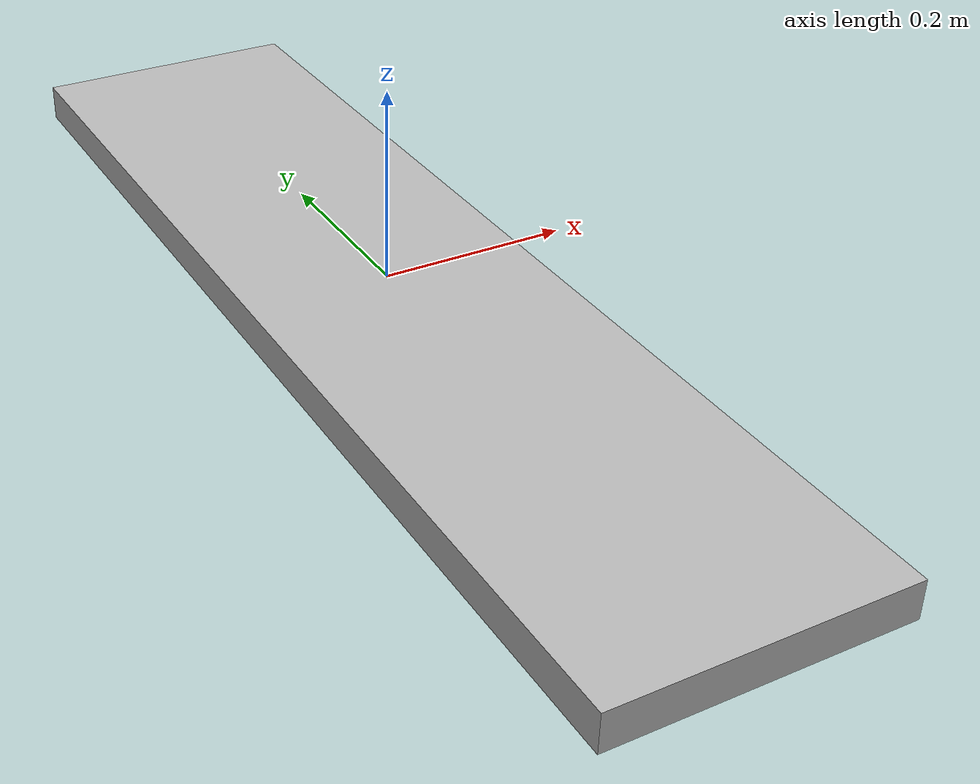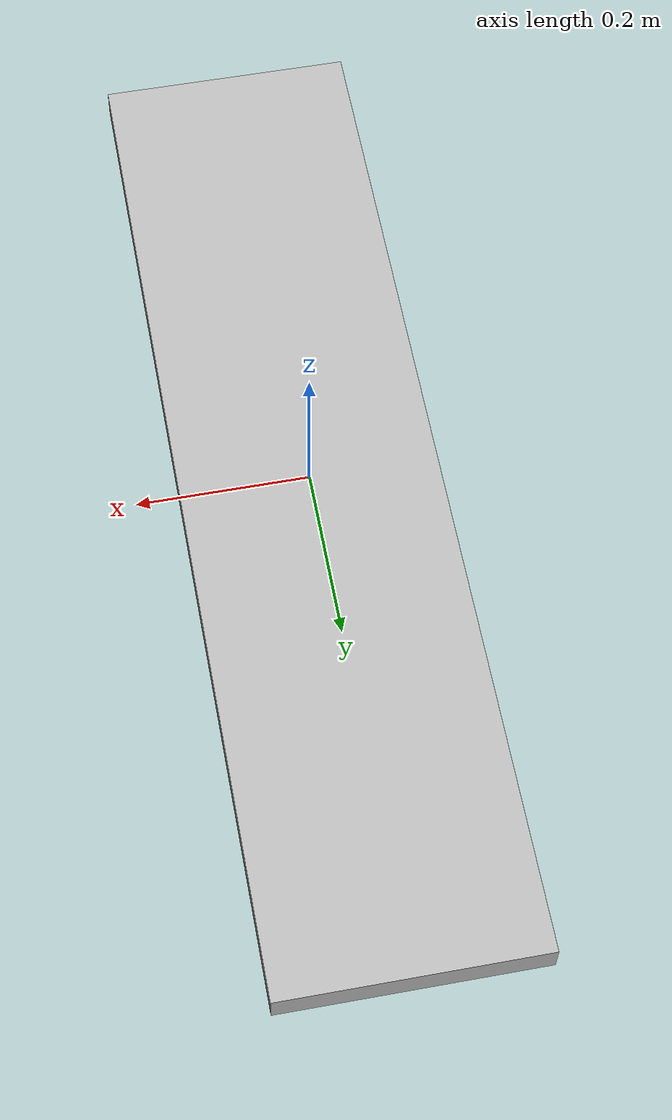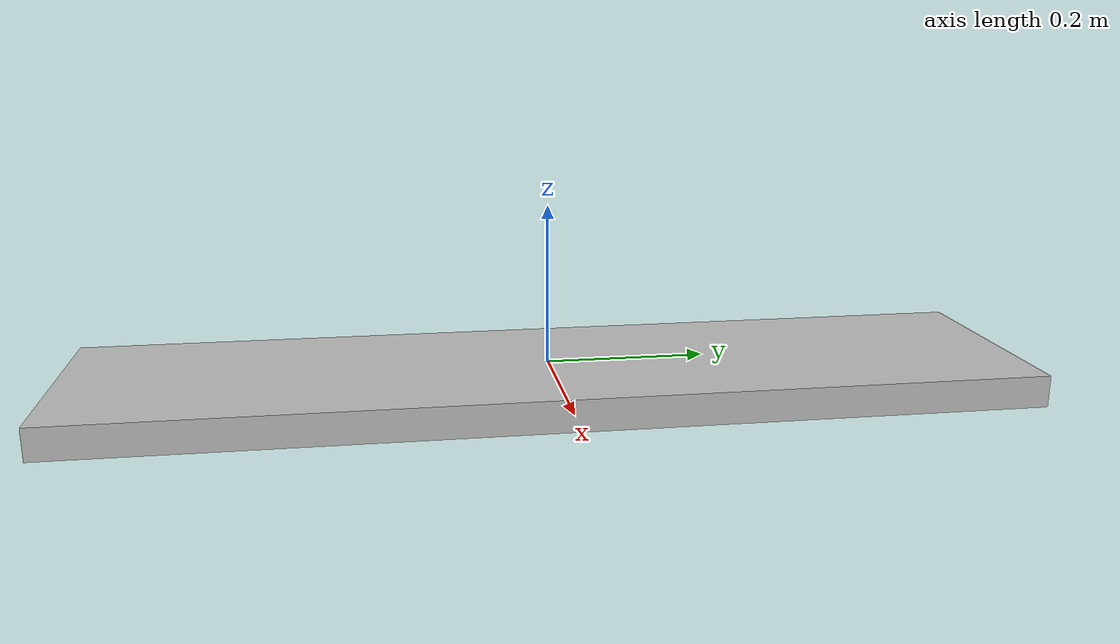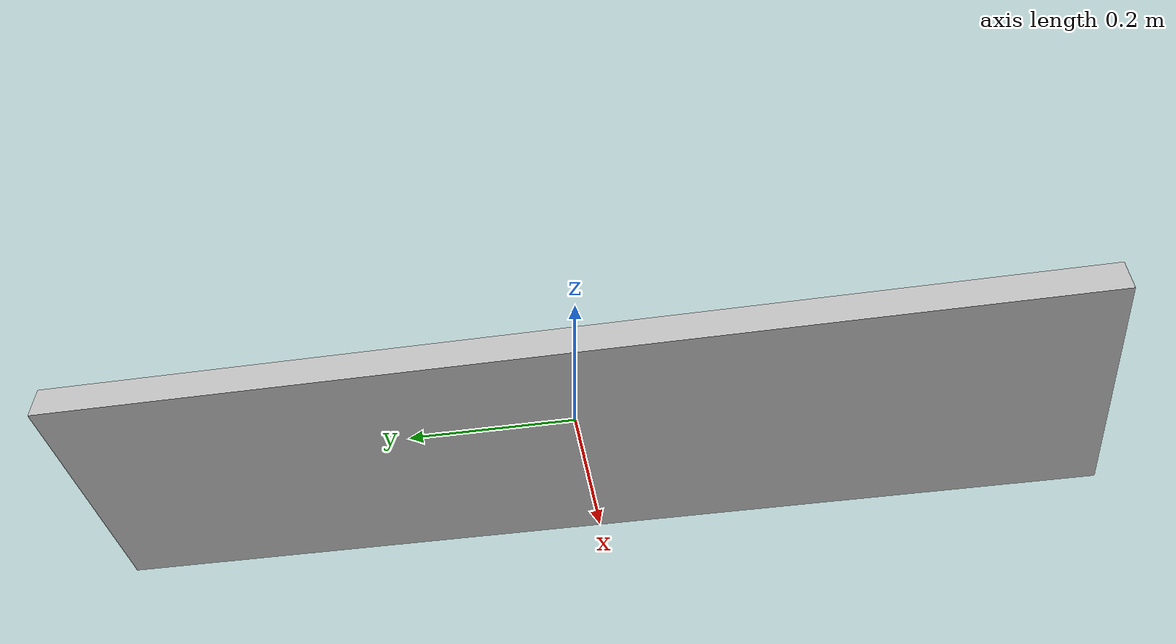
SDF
<?xml version="1.0" ?>
<sdf version="1.5">
  <model name="floor_0.3_concrete">
    <static>true</static>
    <link name="link">
      <pose>0 0 -0.02 0 0 0</pose>
      <collision name="collision">
        <geometry>
          <box>
            <size>0.3 1.2 0.04</size>
          </box>
        </geometry>
      </collision>
      <visual name="visual">
        <geometry>
          <box>
            <size>0.3 1.2 0.04</size>
          </box>
        </geometry>
        <material>
          <script>
            <uri>model://floor_0.3_concrete/materials/scripts</uri>
            <uri>model://floor_0.3_concrete/materials/textures</uri>
            <name>vrc/floor_0.3_concrete</name>
          </script>
        </material>
      </visual>
    </link>
  </model>
</sdf>
